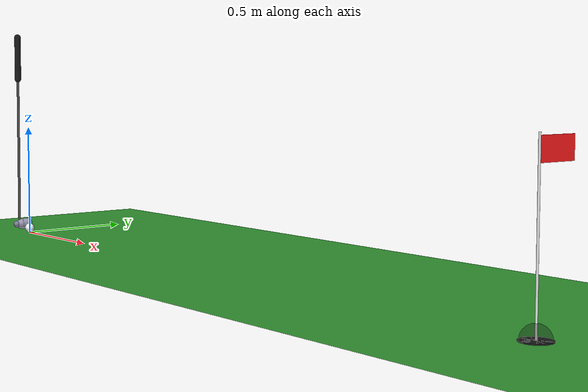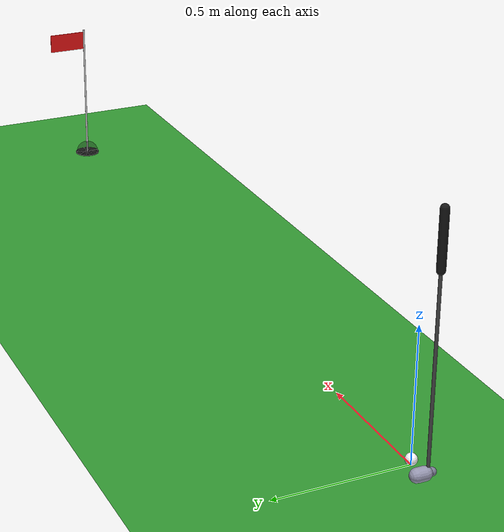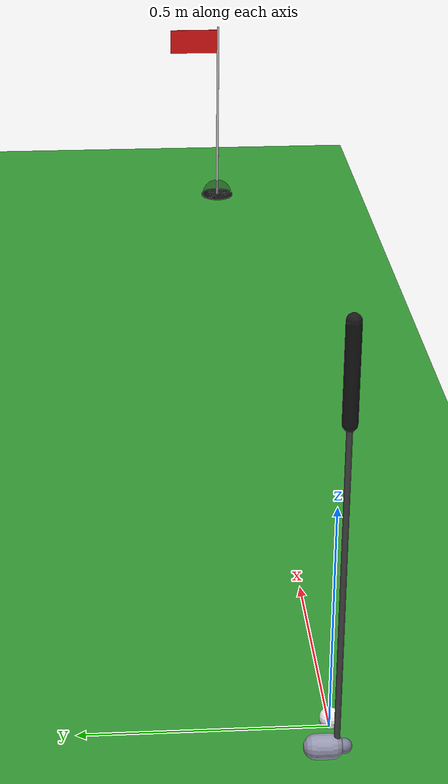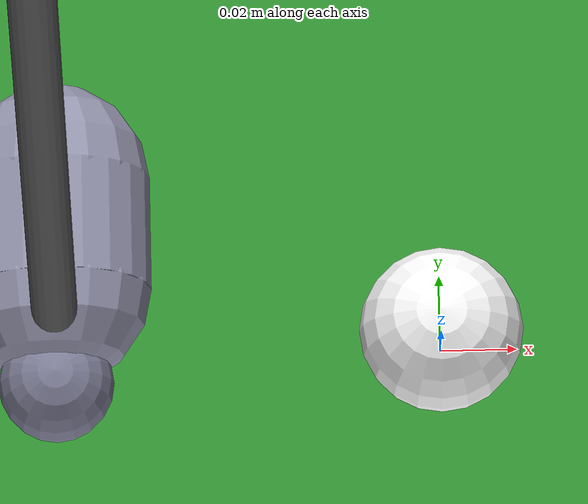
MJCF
<mujoco model="golf">
  <compiler angle="degree" coordinate="local" inertiafromgeom="true"/>

  <option timestep="0.002" iterations="50" solver="Newton" tolerance="1e-10"/>

  <default>
    <joint armature="0.01" damping="0.1" limited="true"/>
    <geom conaffinity="1" condim="3" friction="0.8 0.005 0.0001" rgba="0.8 0.6 0.4 1" margin="0.001"/>
  </default>

  <asset>
    <texture type="skybox" builtin="gradient" rgb1="0.3 0.5 0.7" rgb2="0.0 0.0 0.0" width="512" height="512"/>
    <texture name="ground" type="2d" builtin="checker" rgb1="0.2 0.6 0.2" rgb2="0.1 0.5 0.1" width="512" height="512" mark="cross" markrgb="1 1 1"/>
    <material name="ground_mat" texture="ground" texrepeat="10 10" texuniform="true" reflectance="0.2"/>
  </asset>

  <worldbody>
    <light directional="true" diffuse="0.6 0.6 0.6" specular="0.3 0.3 0.3" pos="0 0 4" dir="0 0 -1"/>
    <light directional="true" diffuse="0.4 0.4 0.4" specular="0.1 0.1 0.1" pos="0 0 3" dir="0 0.2 -1"/>

    <!-- Ground plane -->
    <geom name="floor" type="plane" size="10 10 0.1" rgba="0.2 0.6 0.2 1" material="ground_mat" condim="3" friction="0.8 0.005 0.0001"/>

    <!-- Golf Ball -->
    <body name="ball" pos="0 0 0.02135">
      <joint name="ball_free" type="free" limited="false" damping="0.001"/>
      <geom name="ball_geom" type="sphere" size="0.02135" rgba="1 1 1 1" mass="0.0459" friction="0.6 0.005 0.0001"/>
      <site name="ball_site" pos="0 0 0" size="0.001"/>
    </body>

    <!-- Golf Hole (Cup) with Flag -->
    <body name="hole" pos="3 0 0">
      <!-- Cup - made visual only (contype=0, conaffinity=0) -->
      <geom name="cup_base" type="cylinder" pos="0 0 -0.05" size="0.054 0.05" rgba="0.15 0.15 0.15 1" friction="0.3 0.005 0.0001" contype="0" conaffinity="0"/>
      <geom name="cup_interior" type="cylinder" pos="0 0 -0.04" size="0.05 0.04" rgba="0.1 0.1 0.1 1" friction="0.2 0.005 0.0001" contype="0" conaffinity="0"/>

      <!-- Flag pole - visual only -->
      <geom name="flag_pole" type="cylinder" fromto="0 0 0 0 0 0.6" size="0.004" rgba="0.9 0.9 0.9 1" mass="0.02" contype="0" conaffinity="0"/>

      <!-- Flag (triangular shape using boxes) - visual only -->
      <geom name="flag_main" type="box" pos="0 0.08 0.55" size="0.001 0.08 0.04" rgba="1 0.1 0.1 1" mass="0.001" contype="0" conaffinity="0"/>

      <!-- Marker site for hole position -->
      <site name="hole_site" pos="0 0 0" size="0.05 0.05 0.001" rgba="0 0 0 0.3"/>
    </body>

    <!-- Golf Club -->
    <body name="club_base" pos="-0.1 0 0.93">
      <!-- Shoulder joint - rotation around horizontal and vertical axes -->
      <joint name="club_shoulder_x" type="hinge" pos="0 0 0" axis="1 0 0" range="-inf inf" damping="0.5"/>
      <joint name="club_shoulder_y" type="hinge" pos="0 0 0" axis="0 1 0" range="-inf inf" damping="0.5"/>
      <joint name="club_shoulder_z" type="hinge" pos="0 0 0" axis="0 0 1" range="-inf inf" damping="0.5"/>

      <!-- Club shaft - changed to capsule for MJX compatibility -->
      <geom name="grip" type="capsule" fromto="0 0 0 0 0 -0.2" size="0.015" rgba="0.1 0.1 0.1 1" mass="0.05"/>
      <geom name="shaft" type="capsule" fromto="0 0 -0.2 0 0 -0.9" size="0.006" rgba="0.3 0.3 0.3 1" mass="0.1"/>

      <!-- Club head connection point -->
      <body name="club_head_body" pos="0 0 -0.9">
        <!-- Club head - replaced boxes with capsules for MJX compatibility -->
        <geom name="club_face" type="capsule" fromto="0 0.01 0 0 0.04 0" size="0.025" rgba="0.6 0.6 0.7 1" mass="0.15" friction="0.4 0.005 0.0001"/>
        <geom name="club_back" type="sphere" pos="0 -0.015 0" size="0.015" rgba="0.5 0.5 0.6 1" mass="0.05"/>

        <site name="club_face_site" pos="0 0.055 -0.045" size="0.001"/>
      </body>
    </body>
  </worldbody>

  <actuator>
    <!-- Velocity actuators for club control -->
    <velocity name="shoulder_actuator_x" joint="club_shoulder_x" kv="10" ctrllimited="true" ctrlrange="-20 20"/>
    <velocity name="shoulder_actuator_y" joint="club_shoulder_y" kv="10" ctrllimited="true" ctrlrange="-20 20"/>
    <velocity name="shoulder_actuator_z" joint="club_shoulder_z" kv="10" ctrllimited="true" ctrlrange="-20 20"/>
  </actuator>

  <sensor>
    <framepos name="ball_pos" objtype="site" objname="ball_site"/>
    <framelinvel name="ball_vel" objtype="site" objname="ball_site"/>
    <framepos name="club_face_pos" objtype="site" objname="club_face_site"/>
  </sensor>

</mujoco>
